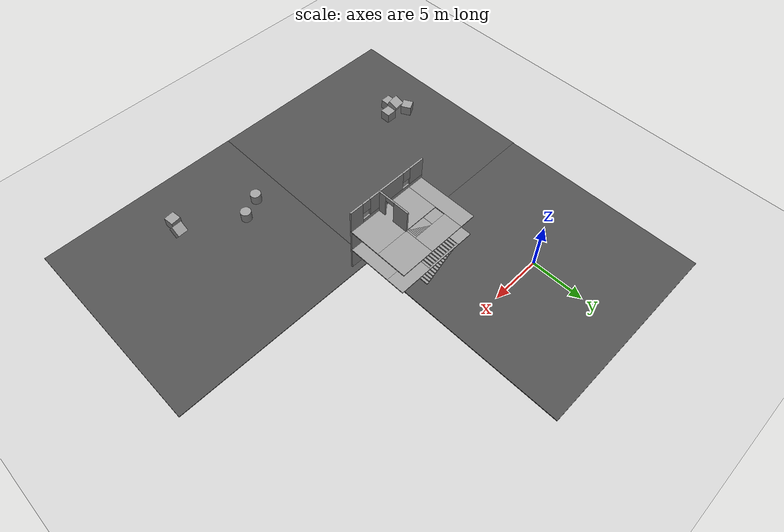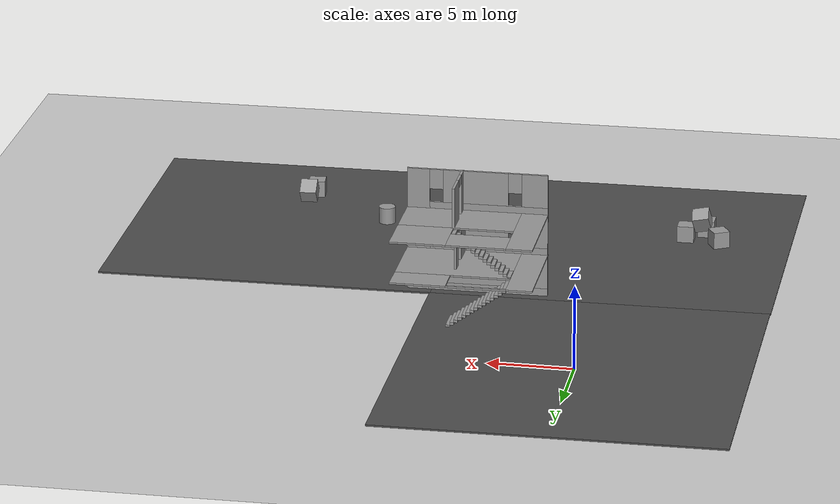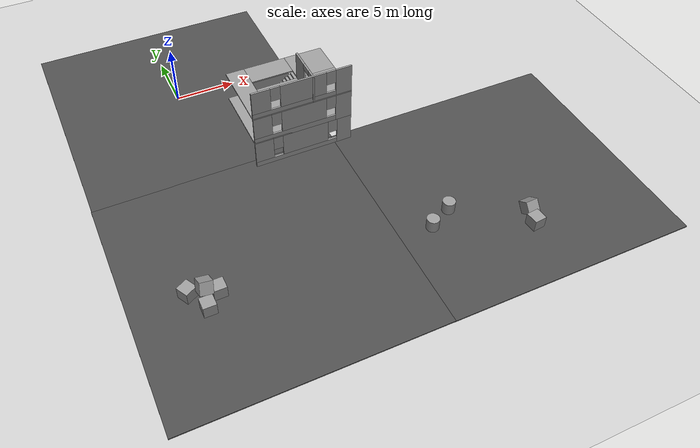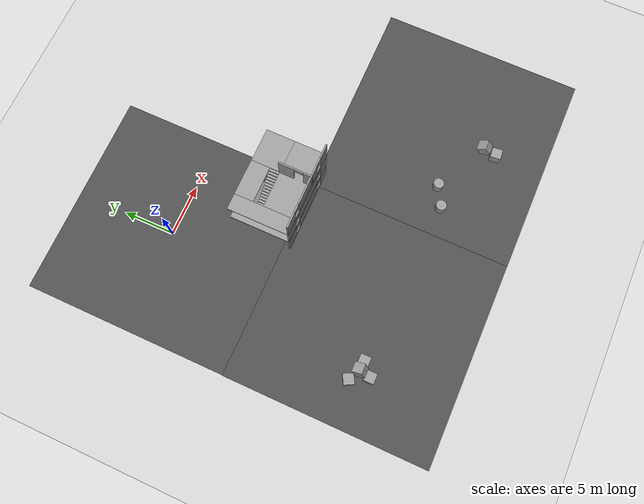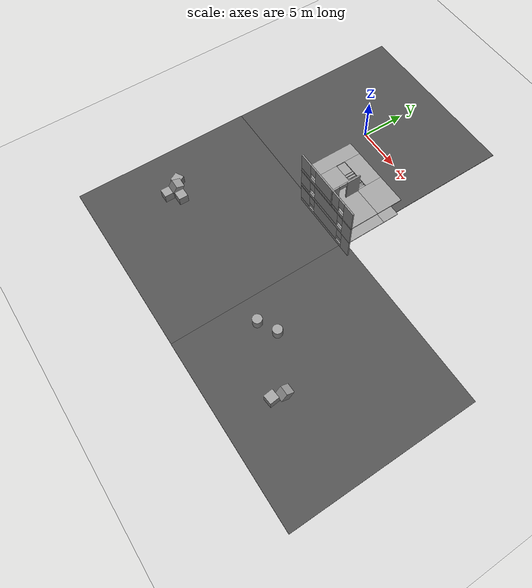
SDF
<sdf version="1.7">
 <world name="default">
  <model name="ground_plane">
   <static>1</static>
   <link name="link">
    <collision name="collision">
     <geometry><plane><normal>0 0 1</normal><size>100 100</size></plane></geometry>
     <surface><friction><ode><mu>100</mu><mu2>50</mu2></ode></friction></surface>
    </collision>
    <visual name="visual">
     <cast_shadows>0</cast_shadows>
     <geometry><plane><normal>0 0 1</normal><size>100 100</size></plane></geometry>
     <material>
      <script><uri>file://media/materials/scripts/gazebo.material</uri><name>Gazebo/Grey</name></script>
     </material>
    </visual>
   </link>
  </model>
  <model name="asphalt_plane">
   <static>1</static>
   <link name="link">
    <collision name="collision"><geometry><box><size>20 20 0.1</size></box></geometry></collision>
    <visual name="visual">
     <cast_shadows>0</cast_shadows>
     <geometry><box><size>20 20 0.1</size></box></geometry>
     <material>
      <script>
       <uri>model://asphalt_plane/materials/scripts</uri>
       <uri>model://asphalt_plane/materials/textures</uri>
       <name>vrc/asphalt</name>
      </script>
     </material>
    </visual>
   </link>
   <pose>0.058806 -0.094526 0 0 -0 0</pose>
  </model>
  <model name="asphalt_plane_1">
   <static>1</static>
   <link name="link">
    <collision name="collision"><geometry><box><size>20 20 0.1</size></box></geometry></collision>
    <visual name="visual">
     <cast_shadows>0</cast_shadows>
     <geometry><box><size>20 20 0.1</size></box></geometry>
     <material>
      <script>
       <uri>model://asphalt_plane/materials/scripts</uri>
       <uri>model://asphalt_plane/materials/textures</uri>
       <name>vrc/asphalt</name>
      </script>
     </material>
    </visual>
   </link>
   <pose>0.022641 -20.0628 0 0 -0 0</pose>
  </model>
  <model name="asphalt_plane_2">
   <static>1</static>
   <link name="link">
    <collision name="collision"><geometry><box><size>20 20 0.1</size></box></geometry></collision>
    <visual name="visual">
     <cast_shadows>0</cast_shadows>
     <geometry><box><size>20 20 0.1</size></box></geometry>
     <material>
      <script>
       <uri>model://asphalt_plane/materials/scripts</uri>
       <uri>model://asphalt_plane/materials/textures</uri>
       <name>vrc/asphalt</name>
      </script>
     </material>
    </visual>
   </link>
   <pose>19.9368 -20.0754 0 0 -0 0</pose>
  </model>
  <model name="simple_building">
   <pose>7.31035 -7.81796 0 0 -0 0</pose>
   <link name="Floor_1">
    <pose>0 0.011464 2.5 0 -0 0</pose>
    <visual name="Floor_1_Visual_0">
     <pose>-3.37449 0 0.05 0 -0 0</pose>
     <geometry><box><size>1.54112 6 0.1</size></box></geometry>
     <material>
      <script><uri>file://media/materials/scripts/gazebo.material</uri><name>Gazebo/Grey</name></script>
      <ambient>1 1 1 1</ambient>
     </material>
    </visual>
    <collision name="Floor_1_Collision_0">
     <geometry><box><size>1.54112 6 0.1</size></box></geometry>
     <pose>-3.37449 0 0.05 0 -0 0</pose>
    </collision>
    <visual name="Floor_1_Visual_1">
     <pose>0.77056 -0.869196 0.05 0 -0 0</pose>
     <geometry><box><size>6.74898 4.26161 0.1</size></box></geometry>
     <material>
      <script><uri>file://media/materials/scripts/gazebo.material</uri><name>Gazebo/Grey</name></script>
      <ambient>1 1 1 1</ambient>
     </material>
    </visual>
    <collision name="Floor_1_Collision_1">
     <geometry><box><size>6.74898 4.26161 0.1</size></box></geometry>
     <pose>0.77056 -0.869196 0.05 0 -0 0</pose>
    </collision>
    <visual name="Floor_1_Visual_2">
     <pose>2.52056 2.1308 0.05 0 -0 0</pose>
     <geometry><box><size>3.24898 1.73839 0.1</size></box></geometry>
     <material>
      <script><uri>file://media/materials/scripts/gazebo.material</uri><name>Gazebo/Grey</name></script>
      <ambient>1 1 1 1</ambient>
     </material>
    </visual>
    <collision name="Floor_1_Collision_2">
     <geometry><box><size>3.24898 1.73839 0.1</size></box></geometry>
     <pose>2.52056 2.1308 0.05 0 -0 0</pose>
    </collision>
    <visual name="Floor_1_Visual_3">
     <pose>-0.85393 2.92738 0.05 0 -0 0</pose>
     <geometry><box><size>3.5 0.145251 0.1</size></box></geometry>
     <material>
      <script><uri>file://media/materials/scripts/gazebo.material</uri><name>Gazebo/Grey</name></script>
      <ambient>1 1 1 1</ambient>
     </material>
    </visual>
    <collision name="Floor_1_Collision_3">
     <geometry><box><size>3.5 0.145251 0.1</size></box></geometry>
     <pose>-0.85393 2.92738 0.05 0 -0 0</pose>
    </collision>
   </link>
   <link name="Floor_2">
    <pose>0.000567 0 5 0 -0 0</pose>
    <visual name="Floor_2_Visual_0">
     <pose>-3.37689 0 0.05 0 -0 0</pose>
     <geometry><box><size>1.53518 6.02293 0.1</size></box></geometry>
     <material>
      <script><uri>file://media/materials/scripts/gazebo.material</uri><name>Gazebo/Grey</name></script>
      <ambient>1 1 1 1</ambient>
     </material>
    </visual>
    <collision name="Floor_2_Collision_0">
     <geometry><box><size>1.53518 6.02293 0.1</size></box></geometry>
     <pose>-3.37689 0 0.05 0 -0 0</pose>
    </collision>
    <visual name="Floor_2_Visual_1">
     <pose>0.767592 -1.4216 0.05 0 -0 0</pose>
     <geometry><box><size>6.75378 3.17973 0.1</size></box></geometry>
     <material>
      <script><uri>file://media/materials/scripts/gazebo.material</uri><name>Gazebo/Grey</name></script>
      <ambient>1 1 1 1</ambient>
     </material>
    </visual>
    <collision name="Floor_2_Collision_1">
     <geometry><box><size>6.75378 3.17973 0.1</size></box></geometry>
     <pose>0.767592 -1.4216 0.05 0 -0 0</pose>
    </collision>
    <visual name="Floor_2_Visual_2">
     <pose>2.51759 1.58986 0.05 0 -0 0</pose>
     <geometry><box><size>3.25378 2.8432 0.1</size></box></geometry>
     <material>
      <script><uri>file://media/materials/scripts/gazebo.material</uri><name>Gazebo/Grey</name></script>
      <ambient>1 1 1 1</ambient>
     </material>
    </visual>
    <collision name="Floor_2_Collision_2">
     <geometry><box><size>3.25378 2.8432 0.1</size></box></geometry>
     <pose>2.51759 1.58986 0.05 0 -0 0</pose>
    </collision>
    <visual name="Floor_2_Visual_3">
     <pose>-0.859299 2.08986 0.05 0 -0 0</pose>
     <geometry><box><size>3.5 1.8432 0.1</size></box></geometry>
     <material>
      <script><uri>file://media/materials/scripts/gazebo.material</uri><name>Gazebo/Grey</name></script>
      <ambient>1 1 1 1</ambient>
     </material>
    </visual>
    <collision name="Floor_2_Collision_3">
     <geometry><box><size>3.5 1.8432 0.1</size></box></geometry>
     <pose>-0.859299 2.08986 0.05 0 -0 0</pose>
    </collision>
   </link>
   <link name="Stairs_0">
    <visual name="Stairs_0_Visual_0">
     <pose>0.779404 2.06964 0.083333 0 -0 -1.5708</pose>
     <geometry><box><size>1.59314 0.233333 0.166667</size></box></geometry>
     <material>
      <script><uri>file://media/materials/scripts/gazebo.material</uri><name>Gazebo/Grey</name></script>
      <ambient>1 1 1 1</ambient>
     </material>
    </visual>
    <collision name="Stairs_0_Collision_0">
     <geometry><box><size>1.59314 0.233333 0.166667</size></box></geometry>
     <pose>0.779404 2.06964 0.083333 0 -0 -1.5708</pose>
    </collision>
    <visual name="Stairs_0_Visual_1">
     <pose>0.54607 2.06964 0.25 0 -0 -1.5708</pose>
     <geometry><box><size>1.59314 0.233333 0.166667</size></box></geometry>
     <material>
      <script><uri>file://media/materials/scripts/gazebo.material</uri><name>Gazebo/Grey</name></script>
      <ambient>1 1 1 1</ambient>
     </material>
    </visual>
    <collision name="Stairs_0_Collision_1">
     <geometry><box><size>1.59314 0.233333 0.166667</size></box></geometry>
     <pose>0.54607 2.06964 0.25 0 -0 -1.5708</pose>
    </collision>
    <visual name="Stairs_0_Visual_2">
     <pose>0.312737 2.06964 0.416667 0 -0 -1.5708</pose>
     <geometry><box><size>1.59314 0.233333 0.166667</size></box></geometry>
     <material>
      <script><uri>file://media/materials/scripts/gazebo.material</uri><name>Gazebo/Grey</name></script>
      <ambient>1 1 1 1</ambient>
     </material>
    </visual>
    <collision name="Stairs_0_Collision_2">
     <geometry><box><size>1.59314 0.233333 0.166667</size></box></geometry>
     <pose>0.312737 2.06964 0.416667 0 -0 -1.5708</pose>
    </collision>
    <visual name="Stairs_0_Visual_3">
     <pose>0.079404 2.06964 0.583333 0 -0 -1.5708</pose>
     <geometry><box><size>1.59314 0.233333 0.166667</size></box></geometry>
     <material>
      <script><uri>file://media/materials/scripts/gazebo.material</uri><name>Gazebo/Grey</name></script>
      <ambient>1 1 1 1</ambient>
     </material>
    </visual>
    <collision name="Stairs_0_Collision_3">
     <geometry><box><size>1.59314 0.233333 0.166667</size></box></geometry>
     <pose>0.079404 2.06964 0.583333 0 -0 -1.5708</pose>
    </collision>
    <visual name="Stairs_0_Visual_4">
     <pose>-0.153929 2.06964 0.75 0 -0 -1.5708</pose>
     <geometry><box><size>1.59314 0.233333 0.166667</size></box></geometry>
     <material>
      <script><uri>file://media/materials/scripts/gazebo.material</uri><name>Gazebo/Grey</name></script>
      <ambient>1 1 1 1</ambient>
     </material>
    </visual>
    <collision name="Stairs_0_Collision_4">
     <geometry><box><size>1.59314 0.233333 0.166667</size></box></geometry>
     <pose>-0.153929 2.06964 0.75 0 -0 -1.5708</pose>
    </collision>
    <visual name="Stairs_0_Visual_5">
     <pose>-0.387263 2.06964 0.916667 0 -0 -1.5708</pose>
     <geometry><box><size>1.59314 0.233333 0.166667</size></box></geometry>
     <material>
      <script><uri>file://media/materials/scripts/gazebo.material</uri><name>Gazebo/Grey</name></script>
      <ambient>1 1 1 1</ambient>
     </material>
    </visual>
    <collision name="Stairs_0_Collision_5">
     <geometry><box><size>1.59314 0.233333 0.166667</size></box></geometry>
     <pose>-0.387263 2.06964 0.916667 0 -0 -1.5708</pose>
    </collision>
    <visual name="Stairs_0_Visual_6">
     <pose>-0.620596 2.06964 1.08333 0 -0 -1.5708</pose>
     <geometry><box><size>1.59314 0.233333 0.166667</size></box></geometry>
     <material>
      <script><uri>file://media/materials/scripts/gazebo.material</uri><name>Gazebo/Grey</name></script>
      <ambient>1 1 1 1</ambient>
     </material>
    </visual>
    <collision name="Stairs_0_Collision_6">
     <geometry><box><size>1.59314 0.233333 0.166667</size></box></geometry>
     <pose>-0.620596 2.06964 1.08333 0 -0 -1.5708</pose>
    </collision>
    <visual name="Stairs_0_Visual_7">
     <pose>-0.85393 2.06964 1.25 0 -0 -1.5708</pose>
     <geometry><box><size>1.59314 0.233333 0.166667</size></box></geometry>
     <material>
      <script><uri>file://media/materials/scripts/gazebo.material</uri><name>Gazebo/Grey</name></script>
      <ambient>1 1 1 1</ambient>
     </material>
    </visual>
    <collision name="Stairs_0_Collision_7">
     <geometry><box><size>1.59314 0.233333 0.166667</size></box></geometry>
     <pose>-0.85393 2.06964 1.25 0 -0 -1.5708</pose>
    </collision>
    <visual name="Stairs_0_Visual_8">
     <pose>-1.08726 2.06964 1.41667 0 -0 -1.5708</pose>
     <geometry><box><size>1.59314 0.233333 0.166667</size></box></geometry>
     <material>
      <script><uri>file://media/materials/scripts/gazebo.material</uri><name>Gazebo/Grey</name></script>
      <ambient>1 1 1 1</ambient>
     </material>
    </visual>
    <collision name="Stairs_0_Collision_8">
     <geometry><box><size>1.59314 0.233333 0.166667</size></box></geometry>
     <pose>-1.08726 2.06964 1.41667 0 -0 -1.5708</pose>
    </collision>
    <visual name="Stairs_0_Visual_9">
     <pose>-1.3206 2.06964 1.58333 0 -0 -1.5708</pose>
     <geometry><box><size>1.59314 0.233333 0.166667</size></box></geometry>
     <material>
      <script><uri>file://media/materials/scripts/gazebo.material</uri><name>Gazebo/Grey</name></script>
      <ambient>1 1 1 1</ambient>
     </material>
    </visual>
    <collision name="Stairs_0_Collision_9">
     <geometry><box><size>1.59314 0.233333 0.166667</size></box></geometry>
     <pose>-1.3206 2.06964 1.58333 0 -0 -1.5708</pose>
    </collision>
    <visual name="Stairs_0_Visual_10">
     <pose>-1.55393 2.06964 1.75 0 -0 -1.5708</pose>
     <geometry><box><size>1.59314 0.233333 0.166667</size></box></geometry>
     <material>
      <script><uri>file://media/materials/scripts/gazebo.material</uri><name>Gazebo/Grey</name></script>
      <ambient>1 1 1 1</ambient>
     </material>
    </visual>
    <collision name="Stairs_0_Collision_10">
     <geometry><box><size>1.59314 0.233333 0.166667</size></box></geometry>
     <pose>-1.55393 2.06964 1.75 0 -0 -1.5708</pose>
    </collision>
    <visual name="Stairs_0_Visual_11">
     <pose>-1.78726 2.06964 1.91667 0 -0 -1.5708</pose>
     <geometry><box><size>1.59314 0.233333 0.166667</size></box></geometry>
     <material>
      <script><uri>file://media/materials/scripts/gazebo.material</uri><name>Gazebo/Grey</name></script>
      <ambient>1 1 1 1</ambient>
     </material>
    </visual>
    <collision name="Stairs_0_Collision_11">
     <geometry><box><size>1.59314 0.233333 0.166667</size></box></geometry>
     <pose>-1.78726 2.06964 1.91667 0 -0 -1.5708</pose>
    </collision>
    <visual name="Stairs_0_Visual_12">
     <pose>-2.0206 2.06964 2.08333 0 -0 -1.5708</pose>
     <geometry><box><size>1.59314 0.233333 0.166667</size></box></geometry>
     <material>
      <script><uri>file://media/materials/scripts/gazebo.material</uri><name>Gazebo/Grey</name></script>
      <ambient>1 1 1 1</ambient>
     </material>
    </visual>
    <collision name="Stairs_0_Collision_12">
     <geometry><box><size>1.59314 0.233333 0.166667</size></box></geometry>
     <pose>-2.0206 2.06964 2.08333 0 -0 -1.5708</pose>
    </collision>
    <visual name="Stairs_0_Visual_13">
     <pose>-2.25393 2.06964 2.25 0 -0 -1.5708</pose>
     <geometry><box><size>1.59314 0.233333 0.166667</size></box></geometry>
     <material>
      <script><uri>file://media/materials/scripts/gazebo.material</uri><name>Gazebo/Grey</name></script>
      <ambient>1 1 1 1</ambient>
     </material>
    </visual>
    <collision name="Stairs_0_Collision_13">
     <geometry><box><size>1.59314 0.233333 0.166667</size></box></geometry>
     <pose>-2.25393 2.06964 2.25 0 -0 -1.5708</pose>
    </collision>
    <visual name="Stairs_0_Visual_14">
     <pose>-2.48726 2.06964 2.41667 0 -0 -1.5708</pose>
     <geometry><box><size>1.59314 0.233333 0.166667</size></box></geometry>
     <material>
      <script><uri>file://media/materials/scripts/gazebo.material</uri><name>Gazebo/Grey</name></script>
      <ambient>1 1 1 1</ambient>
     </material>
    </visual>
    <collision name="Stairs_0_Collision_14">
     <geometry><box><size>1.59314 0.233333 0.166667</size></box></geometry>
     <pose>-2.48726 2.06964 2.41667 0 -0 -1.5708</pose>
    </collision>
   </link>
   <link name="Stairs_3">
    <visual name="Stairs_3_Visual_0">
     <pose>-2.49207 0.668263 2.58333 0 -0 1.5708</pose>
     <geometry><box><size>1 0.233333 0.166667</size></box></geometry>
     <material>
      <script><uri>file://media/materials/scripts/gazebo.material</uri><name>Gazebo/Grey</name></script>
      <ambient>1 1 1 1</ambient>
     </material>
    </visual>
    <collision name="Stairs_3_Collision_0">
     <geometry><box><size>1 0.233333 0.166667</size></box></geometry>
     <pose>-2.49207 0.668263 2.58333 0 -0 1.5708</pose>
    </collision>
    <visual name="Stairs_3_Visual_1">
     <pose>-2.25873 0.668263 2.75 0 -0 1.5708</pose>
     <geometry><box><size>1 0.233333 0.166667</size></box></geometry>
     <material>
      <script><uri>file://media/materials/scripts/gazebo.material</uri><name>Gazebo/Grey</name></script>
      <ambient>1 1 1 1</ambient>
     </material>
    </visual>
    <collision name="Stairs_3_Collision_1">
     <geometry><box><size>1 0.233333 0.166667</size></box></geometry>
     <pose>-2.25873 0.668263 2.75 0 -0 1.5708</pose>
    </collision>
    <visual name="Stairs_3_Visual_2">
     <pose>-2.0254 0.668263 2.91667 0 -0 1.5708</pose>
     <geometry><box><size>1 0.233333 0.166667</size></box></geometry>
     <material>
      <script><uri>file://media/materials/scripts/gazebo.material</uri><name>Gazebo/Grey</name></script>
      <ambient>1 1 1 1</ambient>
     </material>
    </visual>
    <collision name="Stairs_3_Collision_2">
     <geometry><box><size>1 0.233333 0.166667</size></box></geometry>
     <pose>-2.0254 0.668263 2.91667 0 -0 1.5708</pose>
    </collision>
    <visual name="Stairs_3_Visual_3">
     <pose>-1.79207 0.668263 3.08333 0 -0 1.5708</pose>
     <geometry><box><size>1 0.233333 0.166667</size></box></geometry>
     <material>
      <script><uri>file://media/materials/scripts/gazebo.material</uri><name>Gazebo/Grey</name></script>
      <ambient>1 1 1 1</ambient>
     </material>
    </visual>
    <collision name="Stairs_3_Collision_3">
     <geometry><box><size>1 0.233333 0.166667</size></box></geometry>
     <pose>-1.79207 0.668263 3.08333 0 -0 1.5708</pose>
    </collision>
    <visual name="Stairs_3_Visual_4">
     <pose>-1.55873 0.668264 3.25 0 -0 1.5708</pose>
     <geometry><box><size>1 0.233333 0.166667</size></box></geometry>
     <material>
      <script><uri>file://media/materials/scripts/gazebo.material</uri><name>Gazebo/Grey</name></script>
      <ambient>1 1 1 1</ambient>
     </material>
    </visual>
    <collision name="Stairs_3_Collision_4">
     <geometry><box><size>1 0.233333 0.166667</size></box></geometry>
     <pose>-1.55873 0.668264 3.25 0 -0 1.5708</pose>
    </collision>
    <visual name="Stairs_3_Visual_5">
     <pose>-1.3254 0.668264 3.41667 0 -0 1.5708</pose>
     <geometry><box><size>1 0.233333 0.166667</size></box></geometry>
     <material>
      <script><uri>file://media/materials/scripts/gazebo.material</uri><name>Gazebo/Grey</name></script>
      <ambient>1 1 1 1</ambient>
     </material>
    </visual>
    <collision name="Stairs_3_Collision_5">
     <geometry><box><size>1 0.233333 0.166667</size></box></geometry>
     <pose>-1.3254 0.668264 3.41667 0 -0 1.5708</pose>
    </collision>
    <visual name="Stairs_3_Visual_6">
     <pose>-1.09207 0.668264 3.58333 0 -0 1.5708</pose>
     <geometry><box><size>1 0.233333 0.166667</size></box></geometry>
     <material>
      <script><uri>file://media/materials/scripts/gazebo.material</uri><name>Gazebo/Grey</name></script>
      <ambient>1 1 1 1</ambient>
     </material>
    </visual>
    <collision name="Stairs_3_Collision_6">
     <geometry><box><size>1 0.233333 0.166667</size></box></geometry>
     <pose>-1.09207 0.668264 3.58333 0 -0 1.5708</pose>
    </collision>
    <visual name="Stairs_3_Visual_7">
     <pose>-0.858732 0.668264 3.75 0 -0 1.5708</pose>
     <geometry><box><size>1 0.233333 0.166667</size></box></geometry>
     <material>
      <script><uri>file://media/materials/scripts/gazebo.material</uri><name>Gazebo/Grey</name></script>
      <ambient>1 1 1 1</ambient>
     </material>
    </visual>
    <collision name="Stairs_3_Collision_7">
     <geometry><box><size>1 0.233333 0.166667</size></box></geometry>
     <pose>-0.858732 0.668264 3.75 0 -0 1.5708</pose>
    </collision>
    <visual name="Stairs_3_Visual_8">
     <pose>-0.625398 0.668264 3.91667 0 -0 1.5708</pose>
     <geometry><box><size>1 0.233333 0.166667</size></box></geometry>
     <material>
      <script><uri>file://media/materials/scripts/gazebo.material</uri><name>Gazebo/Grey</name></script>
      <ambient>1 1 1 1</ambient>
     </material>
    </visual>
    <collision name="Stairs_3_Collision_8">
     <geometry><box><size>1 0.233333 0.166667</size></box></geometry>
     <pose>-0.625398 0.668264 3.91667 0 -0 1.5708</pose>
    </collision>
    <visual name="Stairs_3_Visual_9">
     <pose>-0.392065 0.668264 4.08333 0 -0 1.5708</pose>
     <geometry><box><size>1 0.233333 0.166667</size></box></geometry>
     <material>
      <script><uri>file://media/materials/scripts/gazebo.material</uri><name>Gazebo/Grey</name></script>
      <ambient>1 1 1 1</ambient>
     </material>
    </visual>
    <collision name="Stairs_3_Collision_9">
     <geometry><box><size>1 0.233333 0.166667</size></box></geometry>
     <pose>-0.392065 0.668264 4.08333 0 -0 1.5708</pose>
    </collision>
    <visual name="Stairs_3_Visual_10">
     <pose>-0.158731 0.668264 4.25 0 -0 1.5708</pose>
     <geometry><box><size>1 0.233333 0.166667</size></box></geometry>
     <material>
      <script><uri>file://media/materials/scripts/gazebo.material</uri><name>Gazebo/Grey</name></script>
      <ambient>1 1 1 1</ambient>
     </material>
    </visual>
    <collision name="Stairs_3_Collision_10">
     <geometry><box><size>1 0.233333 0.166667</size></box></geometry>
     <pose>-0.158731 0.668264 4.25 0 -0 1.5708</pose>
    </collision>
    <visual name="Stairs_3_Visual_11">
     <pose>0.074602 0.668264 4.41667 0 -0 1.5708</pose>
     <geometry><box><size>1 0.233333 0.166667</size></box></geometry>
     <material>
      <script><uri>file://media/materials/scripts/gazebo.material</uri><name>Gazebo/Grey</name></script>
      <ambient>1 1 1 1</ambient>
     </material>
    </visual>
    <collision name="Stairs_3_Collision_11">
     <geometry><box><size>1 0.233333 0.166667</size></box></geometry>
     <pose>0.074602 0.668264 4.41667 0 -0 1.5708</pose>
    </collision>
    <visual name="Stairs_3_Visual_12">
     <pose>0.307935 0.668264 4.58333 0 -0 1.5708</pose>
     <geometry><box><size>1 0.233333 0.166667</size></box></geometry>
     <material>
      <script><uri>file://media/materials/scripts/gazebo.material</uri><name>Gazebo/Grey</name></script>
      <ambient>1 1 1 1</ambient>
     </material>
    </visual>
    <collision name="Stairs_3_Collision_12">
     <geometry><box><size>1 0.233333 0.166667</size></box></geometry>
     <pose>0.307935 0.668264 4.58333 0 -0 1.5708</pose>
    </collision>
    <visual name="Stairs_3_Visual_13">
     <pose>0.541269 0.668264 4.75 0 -0 1.5708</pose>
     <geometry><box><size>1 0.233333 0.166667</size></box></geometry>
     <material>
      <script><uri>file://media/materials/scripts/gazebo.material</uri><name>Gazebo/Grey</name></script>
      <ambient>1 1 1 1</ambient>
     </material>
    </visual>
    <collision name="Stairs_3_Collision_13">
     <geometry><box><size>1 0.233333 0.166667</size></box></geometry>
     <pose>0.541269 0.668264 4.75 0 -0 1.5708</pose>
    </collision>
    <visual name="Stairs_3_Visual_14">
     <pose>0.774602 0.668264 4.91667 0 -0 1.5708</pose>
     <geometry><box><size>1 0.233333 0.166667</size></box></geometry>
     <material>
      <script><uri>file://media/materials/scripts/gazebo.material</uri><name>Gazebo/Grey</name></script>
      <ambient>1 1 1 1</ambient>
     </material>
    </visual>
    <collision name="Stairs_3_Collision_14">
     <geometry><box><size>1 0.233333 0.166667</size></box></geometry>
     <pose>0.774602 0.668264 4.91667 0 -0 1.5708</pose>
    </collision>
   </link>
   <link name="Wall_20">
    <pose>0.008172 -2.91354 2.5 0 -0 3.14159</pose>
    <visual name="Wall_20_Visual_0">
     <pose>-3.46119 0 1.25 0 -0 0</pose>
     <geometry><box><size>1.35138 0.15 2.5</size></box></geometry>
     <material>
      <script><uri>file://media/materials/scripts/gazebo.material</uri><name>Gazebo/Grey</name></script>
      <ambient>1 1 1 1</ambient>
     </material>
    </visual>
    <collision name="Wall_20_Collision_0">
     <geometry><box><size>1.35138 0.15 2.5</size></box></geometry>
     <pose>-3.46119 0 1.25 0 -0 0</pose>
    </collision>
    <visual name="Wall_20_Visual_1">
     <pose>0.675691 0 0.25 0 -0 0</pose>
     <geometry><box><size>6.92237 0.15 0.5</size></box></geometry>
     <material>
      <script><uri>file://media/materials/scripts/gazebo.material</uri><name>Gazebo/Grey</name></script>
      <ambient>1 1 1 1</ambient>
     </material>
    </visual>
    <collision name="Wall_20_Collision_1">
     <geometry><box><size>6.92237 0.15 0.5</size></box></geometry>
     <pose>0.675691 0 0.25 0 -0 0</pose>
    </collision>
    <visual name="Wall_20_Visual_2">
     <pose>-0.088975 0 1.5 0 -0 0</pose>
     <geometry><box><size>3.79304 0.15 2</size></box></geometry>
     <material>
      <script><uri>file://media/materials/scripts/gazebo.material</uri><name>Gazebo/Grey</name></script>
      <ambient>1 1 1 1</ambient>
     </material>
    </visual>
    <collision name="Wall_20_Collision_2">
     <geometry><box><size>3.79304 0.15 2</size></box></geometry>
     <pose>-0.088975 0 1.5 0 -0 0</pose>
    </collision>
    <visual name="Wall_20_Visual_3">
     <pose>3.37221 0 1.5 0 -0 0</pose>
     <geometry><box><size>1.52933 0.15 2</size></box></geometry>
     <material>
      <script><uri>file://media/materials/scripts/gazebo.material</uri><name>Gazebo/Grey</name></script>
      <ambient>1 1 1 1</ambient>
     </material>
    </visual>
    <collision name="Wall_20_Collision_3">
     <geometry><box><size>1.52933 0.15 2</size></box></geometry>
     <pose>3.37221 0 1.5 0 -0 0</pose>
    </collision>
    <visual name="Wall_20_Visual_4">
     <pose>-2.3855 0 1.9 0 -0 0</pose>
     <geometry><box><size>0.8 0.15 1.2</size></box></geometry>
     <material>
      <script><uri>file://media/materials/scripts/gazebo.material</uri><name>Gazebo/Grey</name></script>
      <ambient>1 1 1 1</ambient>
     </material>
    </visual>
    <collision name="Wall_20_Collision_4">
     <geometry><box><size>0.8 0.15 1.2</size></box></geometry>
     <pose>-2.3855 0 1.9 0 -0 0</pose>
    </collision>
    <visual name="Wall_20_Visual_5">
     <pose>2.20755 0 1.9 0 -0 0</pose>
     <geometry><box><size>0.8 0.15 1.2</size></box></geometry>
     <material>
      <script><uri>file://media/materials/scripts/gazebo.material</uri><name>Gazebo/Grey</name></script>
      <ambient>1 1 1 1</ambient>
     </material>
    </visual>
    <collision name="Wall_20_Collision_5">
     <geometry><box><size>0.8 0.15 1.2</size></box></geometry>
     <pose>2.20755 0 1.9 0 -0 0</pose>
    </collision>
   </link>
   <link name="Wall_25">
    <pose>0.008172 -2.91354 5 0 -0 3.14159</pose>
    <visual name="Wall_25_Visual_0">
     <pose>-3.46879 0 1.25 0 -0 0</pose>
     <geometry><box><size>1.33617 0.15 2.5</size></box></geometry>
     <material>
      <script><uri>file://media/materials/scripts/gazebo.material</uri><name>Gazebo/Grey</name></script>
      <ambient>1 1 1 1</ambient>
     </material>
    </visual>
    <collision name="Wall_25_Collision_0">
     <geometry><box><size>1.33617 0.15 2.5</size></box></geometry>
     <pose>-3.46879 0 1.25 0 -0 0</pose>
    </collision>
    <visual name="Wall_25_Visual_1">
     <pose>0.668087 0 0.25 0 -0 0</pose>
     <geometry><box><size>6.93758 0.15 0.5</size></box></geometry>
     <material>
      <script><uri>file://media/materials/scripts/gazebo.material</uri><name>Gazebo/Grey</name></script>
      <ambient>1 1 1 1</ambient>
     </material>
    </visual>
    <collision name="Wall_25_Collision_1">
     <geometry><box><size>6.93758 0.15 0.5</size></box></geometry>
     <pose>0.668087 0 0.25 0 -0 0</pose>
    </collision>
    <visual name="Wall_25_Visual_2">
     <pose>-0.096579 0 1.5 0 -0 0</pose>
     <geometry><box><size>3.80825 0.15 2</size></box></geometry>
     <material>
      <script><uri>file://media/materials/scripts/gazebo.material</uri><name>Gazebo/Grey</name></script>
      <ambient>1 1 1 1</ambient>
     </material>
    </visual>
    <collision name="Wall_25_Collision_2">
     <geometry><box><size>3.80825 0.15 2</size></box></geometry>
     <pose>-0.096579 0 1.5 0 -0 0</pose>
    </collision>
    <visual name="Wall_25_Visual_3">
     <pose>3.37221 0 1.5 0 -0 0</pose>
     <geometry><box><size>1.52933 0.15 2</size></box></geometry>
     <material>
      <script><uri>file://media/materials/scripts/gazebo.material</uri><name>Gazebo/Grey</name></script>
      <ambient>1 1 1 1</ambient>
     </material>
    </visual>
    <collision name="Wall_25_Collision_3">
     <geometry><box><size>1.52933 0.15 2</size></box></geometry>
     <pose>3.37221 0 1.5 0 -0 0</pose>
    </collision>
    <visual name="Wall_25_Visual_4">
     <pose>-2.4007 0 1.9 0 -0 0</pose>
     <geometry><box><size>0.8 0.15 1.2</size></box></geometry>
     <material>
      <script><uri>file://media/materials/scripts/gazebo.material</uri><name>Gazebo/Grey</name></script>
      <ambient>1 1 1 1</ambient>
     </material>
    </visual>
    <collision name="Wall_25_Collision_4">
     <geometry><box><size>0.8 0.15 1.2</size></box></geometry>
     <pose>-2.4007 0 1.9 0 -0 0</pose>
    </collision>
    <visual name="Wall_25_Visual_5">
     <pose>2.20755 0 1.9 0 -0 0</pose>
     <geometry><box><size>0.8 0.15 1.2</size></box></geometry>
     <material>
      <script><uri>file://media/materials/scripts/gazebo.material</uri><name>Gazebo/Grey</name></script>
      <ambient>1 1 1 1</ambient>
     </material>
    </visual>
    <collision name="Wall_25_Collision_5">
     <geometry><box><size>0.8 0.15 1.2</size></box></geometry>
     <pose>2.20755 0 1.9 0 -0 0</pose>
    </collision>
   </link>
   <link name="Wall_32">
    <pose>0.906209 -1.38646 5 0 -0 1.5708</pose>
    <visual name="Wall_32_Visual_0">
     <pose>-1.20054 0 1.25 0 -0 0</pose>
     <geometry><box><size>0.848925 0.15 2.5</size></box></geometry>
     <material>
      <script><uri>file://media/materials/scripts/gazebo.material</uri><name>Gazebo/Grey</name></script>
      <ambient>1 1 1 1</ambient>
     </material>
    </visual>
    <collision name="Wall_32_Collision_0">
     <geometry><box><size>0.848925 0.15 2.5</size></box></geometry>
     <pose>-1.20054 0 1.25 0 -0 0</pose>
    </collision>
    <visual name="Wall_32_Visual_1">
     <pose>0.874463 0 1.25 0 -0 0</pose>
     <geometry><box><size>1.50107 0.15 2.5</size></box></geometry>
     <material>
      <script><uri>file://media/materials/scripts/gazebo.material</uri><name>Gazebo/Grey</name></script>
      <ambient>1 1 1 1</ambient>
     </material>
    </visual>
    <collision name="Wall_32_Collision_1">
     <geometry><box><size>1.50107 0.15 2.5</size></box></geometry>
     <pose>0.874463 0 1.25 0 -0 0</pose>
    </collision>
    <visual name="Wall_32_Visual_2">
     <pose>-0.326075 0 2.25 0 -0 0</pose>
     <geometry><box><size>0.9 0.15 0.5</size></box></geometry>
     <material>
      <script><uri>file://media/materials/scripts/gazebo.material</uri><name>Gazebo/Grey</name></script>
      <ambient>1 1 1 1</ambient>
     </material>
    </visual>
    <collision name="Wall_32_Collision_2">
     <geometry><box><size>0.9 0.15 0.5</size></box></geometry>
     <pose>-0.326075 0 2.25 0 -0 0</pose>
    </collision>
   </link>
   <link name="Wall_36">
    <pose>0.779949 -1.36145 2.5 0 0 -1.5708</pose>
    <visual name="Wall_36_Visual_0">
     <pose>-1.27259 0 1.25 0 -0 0</pose>
     <geometry><box><size>0.704821 0.15 2.5</size></box></geometry>
     <material>
      <script><uri>file://media/materials/scripts/gazebo.material</uri><name>Gazebo/Grey</name></script>
      <ambient>1 1 1 1</ambient>
     </material>
    </visual>
    <collision name="Wall_36_Collision_0">
     <geometry><box><size>0.704821 0.15 2.5</size></box></geometry>
     <pose>-1.27259 0 1.25 0 -0 0</pose>
    </collision>
    <visual name="Wall_36_Visual_1">
     <pose>0.802411 0 1.25 0 -0 0</pose>
     <geometry><box><size>1.64518 0.15 2.5</size></box></geometry>
     <material>
      <script><uri>file://media/materials/scripts/gazebo.material</uri><name>Gazebo/Grey</name></script>
      <ambient>1 1 1 1</ambient>
     </material>
    </visual>
    <collision name="Wall_36_Collision_1">
     <geometry><box><size>1.64518 0.15 2.5</size></box></geometry>
     <pose>0.802411 0 1.25 0 -0 0</pose>
    </collision>
    <visual name="Wall_36_Visual_2">
     <pose>-0.470179 0 2.25 0 -0 0</pose>
     <geometry><box><size>0.9 0.15 0.5</size></box></geometry>
     <material>
      <script><uri>file://media/materials/scripts/gazebo.material</uri><name>Gazebo/Grey</name></script>
      <ambient>1 1 1 1</ambient>
     </material>
    </visual>
    <collision name="Wall_36_Collision_2">
     <geometry><box><size>0.9 0.15 0.5</size></box></geometry>
     <pose>-0.470179 0 2.25 0 -0 0</pose>
    </collision>
   </link>
   <link name="Wall_4">
    <pose>0.008172 -2.91354 0 0 -0 3.14159</pose>
    <visual name="Wall_4_Visual_0">
     <pose>-3.51442 0 1.25 0 -0 0</pose>
     <geometry><box><size>1.24492 0.15 2.5</size></box></geometry>
     <material>
      <script><uri>file://media/materials/scripts/gazebo.material</uri><name>Gazebo/Grey</name></script>
      <ambient>1 1 1 1</ambient>
     </material>
    </visual>
    <collision name="Wall_4_Collision_0">
     <geometry><box><size>1.24492 0.15 2.5</size></box></geometry>
     <pose>-3.51442 0 1.25 0 -0 0</pose>
    </collision>
    <visual name="Wall_4_Visual_1">
     <pose>0.622461 0 0.25 0 -0 0</pose>
     <geometry><box><size>7.02884 0.15 0.5</size></box></geometry>
     <material>
      <script><uri>file://media/materials/scripts/gazebo.material</uri><name>Gazebo/Grey</name></script>
      <ambient>1 1 1 1</ambient>
     </material>
    </visual>
    <collision name="Wall_4_Collision_1">
     <geometry><box><size>7.02884 0.15 0.5</size></box></geometry>
     <pose>0.622461 0 0.25 0 -0 0</pose>
    </collision>
    <visual name="Wall_4_Visual_2">
     <pose>-0.14981 0 1.5 0 -0 0</pose>
     <geometry><box><size>3.88429 0.15 2</size></box></geometry>
     <material>
      <script><uri>file://media/materials/scripts/gazebo.material</uri><name>Gazebo/Grey</name></script>
      <ambient>1 1 1 1</ambient>
     </material>
    </visual>
    <collision name="Wall_4_Collision_2">
     <geometry><box><size>3.88429 0.15 2</size></box></geometry>
     <pose>-0.14981 0 1.5 0 -0 0</pose>
    </collision>
    <visual name="Wall_4_Visual_3">
     <pose>3.36461 0 1.5 0 -0 0</pose>
     <geometry><box><size>1.54454 0.15 2</size></box></geometry>
     <material>
      <script><uri>file://media/materials/scripts/gazebo.material</uri><name>Gazebo/Grey</name></script>
      <ambient>1 1 1 1</ambient>
     </material>
    </visual>
    <collision name="Wall_4_Collision_3">
     <geometry><box><size>1.54454 0.15 2</size></box></geometry>
     <pose>3.36461 0 1.5 0 -0 0</pose>
    </collision>
    <visual name="Wall_4_Visual_4">
     <pose>-2.49196 0 1.9 0 -0 0</pose>
     <geometry><box><size>0.8 0.15 1.2</size></box></geometry>
     <material>
      <script><uri>file://media/materials/scripts/gazebo.material</uri><name>Gazebo/Grey</name></script>
      <ambient>1 1 1 1</ambient>
     </material>
    </visual>
    <collision name="Wall_4_Collision_4">
     <geometry><box><size>0.8 0.15 1.2</size></box></geometry>
     <pose>-2.49196 0 1.9 0 -0 0</pose>
    </collision>
    <visual name="Wall_4_Visual_5">
     <pose>2.19234 0 1.9 0 -0 0</pose>
     <geometry><box><size>0.8 0.15 1.2</size></box></geometry>
     <material>
      <script><uri>file://media/materials/scripts/gazebo.material</uri><name>Gazebo/Grey</name></script>
      <ambient>1 1 1 1</ambient>
     </material>
    </visual>
    <collision name="Wall_4_Collision_5">
     <geometry><box><size>0.8 0.15 1.2</size></box></geometry>
     <pose>2.19234 0 1.9 0 -0 0</pose>
    </collision>
   </link>
   <static>1</static>
  </model>
  <model name="unit_box_1">
   <pose>-5.68447 -20.5637 0.549997 -0 7e-06 0.487547</pose>
   <link name="link">
    <inertial>
     <mass>1</mass>
     <inertia>
      <ixx>0.166667</ixx>
      <ixy>0</ixy>
      <ixz>0</ixz>
      <iyy>0.166667</iyy>
      <iyz>0</iyz>
      <izz>0.166667</izz>
     </inertia>
    </inertial>
    <collision name="collision"><geometry><box><size>1 1 1</size></box></geometry></collision>
    <visual name="visual">
     <geometry><box><size>1 1 1</size></box></geometry>
     <material>
      <script><name>Gazebo/Grey</name><uri>file://media/materials/scripts/gazebo.material</uri></script>
     </material>
    </visual>
   </link>
  </model>
  <model name="unit_cylinder_0">
   <pose>12.6987 -22.2007 0.550002 -4e-06 1e-06 -0.000156</pose>
   <link name="link">
    <inertial>
     <mass>1</mass>
     <inertia><ixx>0.145833</ixx><ixy>0</ixy><ixz>0</ixz><iyy>0.145833</iyy><iyz>0</iyz><izz>0.125</izz></inertia>
    </inertial>
    <collision name="collision">
     <geometry><cylinder><radius>0.5</radius><length>1</length></cylinder></geometry>
    </collision>
    <visual name="visual">
     <geometry><cylinder><radius>0.5</radius><length>1</length></cylinder></geometry>
     <material>
      <script><name>Gazebo/Grey</name><uri>file://media/materials/scripts/gazebo.material</uri></script>
     </material>
    </visual>
   </link>
  </model>
  <model name="unit_cylinder_1">
   <pose>14.6387 -21.1899 0.55 0 -0 0.000117</pose>
   <link name="link">
    <inertial>
     <mass>1</mass>
     <inertia><ixx>0.145833</ixx><ixy>0</ixy><ixz>0</ixz><iyy>0.145833</iyy><iyz>0</iyz><izz>0.125</izz></inertia>
    </inertial>
    <collision name="collision">
     <geometry><cylinder><radius>0.5</radius><length>1</length></cylinder></geometry>
    </collision>
    <visual name="visual">
     <geometry><cylinder><radius>0.5</radius><length>1</length></cylinder></geometry>
     <material>
      <script><name>Gazebo/Grey</name><uri>file://media/materials/scripts/gazebo.material</uri></script>
     </material>
    </visual>
   </link>
  </model>
  <model name="unit_box_3">
   <pose>19.7459 -25.1659 0.549996 0 9e-06 0.106451</pose>
   <link name="link">
    <inertial>
     <mass>1</mass>
     <inertia>
      <ixx>0.166667</ixx>
      <ixy>0</ixy>
      <ixz>0</ixz>
      <iyy>0.166667</iyy>
      <iyz>0</iyz>
      <izz>0.166667</izz>
     </inertia>
    </inertial>
    <collision name="collision"><geometry><box><size>1 1 1</size></box></geometry></collision>
    <visual name="visual">
     <geometry><box><size>1 1 1</size></box></geometry>
     <material>
      <script><name>Gazebo/Grey</name><uri>file://media/materials/scripts/gazebo.material</uri></script>
     </material>
    </visual>
   </link>
  </model>
  <model name="unit_box_7">
   <pose>-3.63914 -21.2142 0.55 0 -0 0.002876</pose>
   <link name="link">
    <inertial>
     <mass>1</mass>
     <inertia>
      <ixx>0.166667</ixx>
      <ixy>0</ixy>
      <ixz>0</ixz>
      <iyy>0.166667</iyy>
      <iyz>0</iyz>
      <izz>0.166667</izz>
     </inertia>
    </inertial>
    <collision name="collision"><geometry><box><size>1 1 1</size></box></geometry></collision>
    <visual name="visual">
     <geometry><box><size>1 1 1</size></box></geometry>
     <material>
      <script><name>Gazebo/Grey</name><uri>file://media/materials/scripts/gazebo.material</uri></script>
     </material>
    </visual>
   </link>
  </model>
  <model name="unit_box_8">
   <pose>-4.74774 -22.269 0.549997 0 -5e-06 -0.001979</pose>
   <link name="link">
    <inertial>
     <mass>1</mass>
     <inertia>
      <ixx>0.166667</ixx>
      <ixy>0</ixy>
      <ixz>0</ixz>
      <iyy>0.166667</iyy>
      <iyz>0</iyz>
      <izz>0.166667</izz>
     </inertia>
    </inertial>
    <collision name="collision"><geometry><box><size>1 1 1</size></box></geometry></collision>
    <visual name="visual">
     <geometry><box><size>1 1 1</size></box></geometry>
     <material>
      <script><name>Gazebo/Grey</name><uri>file://media/materials/scripts/gazebo.material</uri></script>
     </material>
    </visual>
   </link>
  </model>
  <model name="unit_box_9">
   <pose>-4.5819 -21.1898 1.39702 -0.441849 0.189016 0.002883</pose>
   <link name="link">
    <inertial>
     <mass>1</mass>
     <inertia>
      <ixx>0.166667</ixx>
      <ixy>0</ixy>
      <ixz>0</ixz>
      <iyy>0.166667</iyy>
      <iyz>0</iyz>
      <izz>0.166667</izz>
     </inertia>
    </inertial>
    <collision name="collision"><geometry><box><size>1 1 1</size></box></geometry></collision>
    <visual name="visual">
     <geometry><box><size>1 1 1</size></box></geometry>
     <material>
      <script><name>Gazebo/Grey</name><uri>file://media/materials/scripts/gazebo.material</uri></script>
     </material>
    </visual>
   </link>
  </model>
  <model name="unit_box_10">
   <pose>20.0065 -23.9224 0.749709 -0.640618 -0 0.038057</pose>
   <link name="link">
    <inertial>
     <mass>1</mass>
     <inertia>
      <ixx>0.166667</ixx>
      <ixy>0</ixy>
      <ixz>0</ixz>
      <iyy>0.166667</iyy>
      <iyz>0</iyz>
      <izz>0.166667</izz>
     </inertia>
    </inertial>
    <collision name="collision"><geometry><box><size>1 1 1</size></box></geometry></collision>
    <visual name="visual">
     <geometry><box><size>1 1 1</size></box></geometry>
     <material>
      <script><name>Gazebo/Grey</name><uri>file://media/materials/scripts/gazebo.material</uri></script>
     </material>
    </visual>
   </link>
  </model>
 </world>
</sdf>
